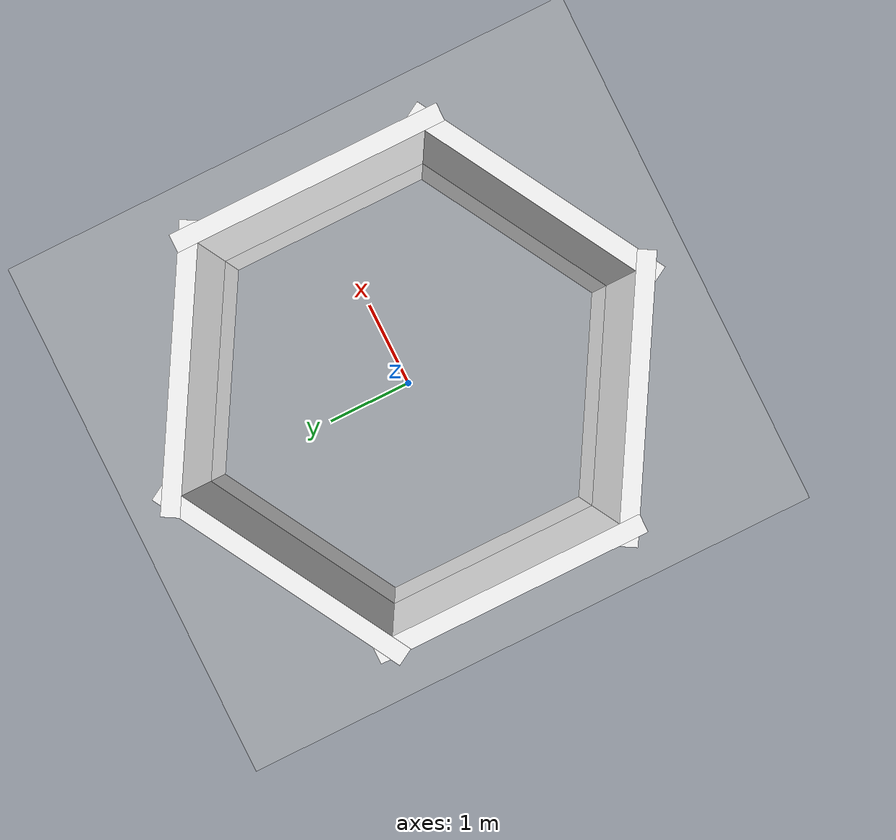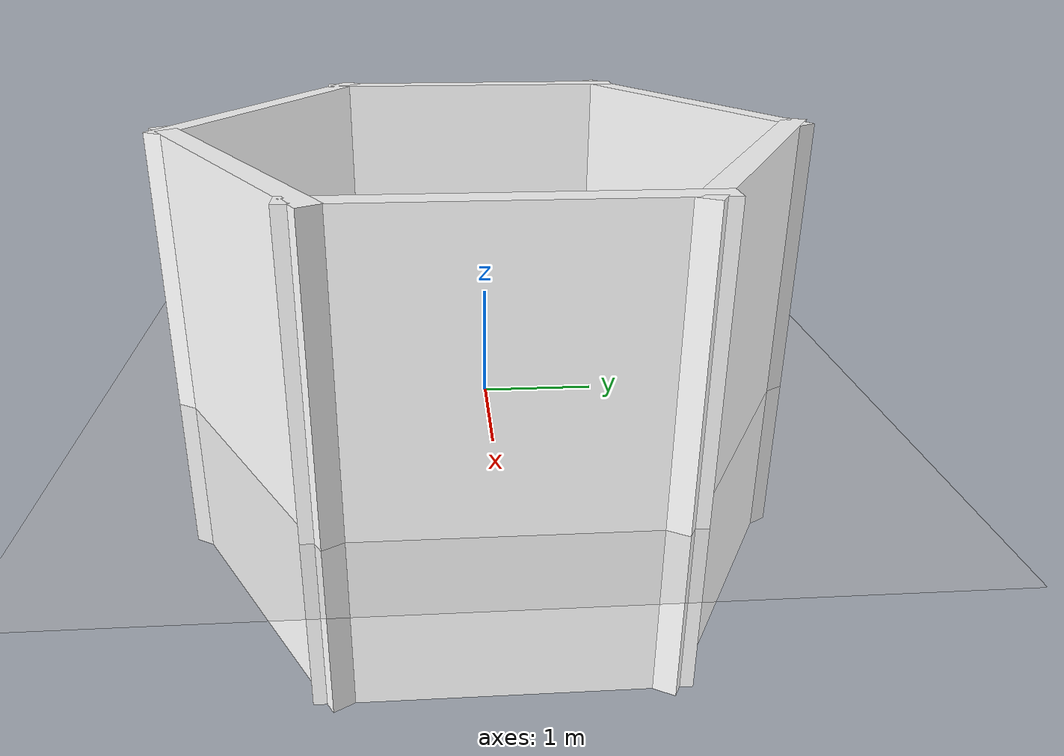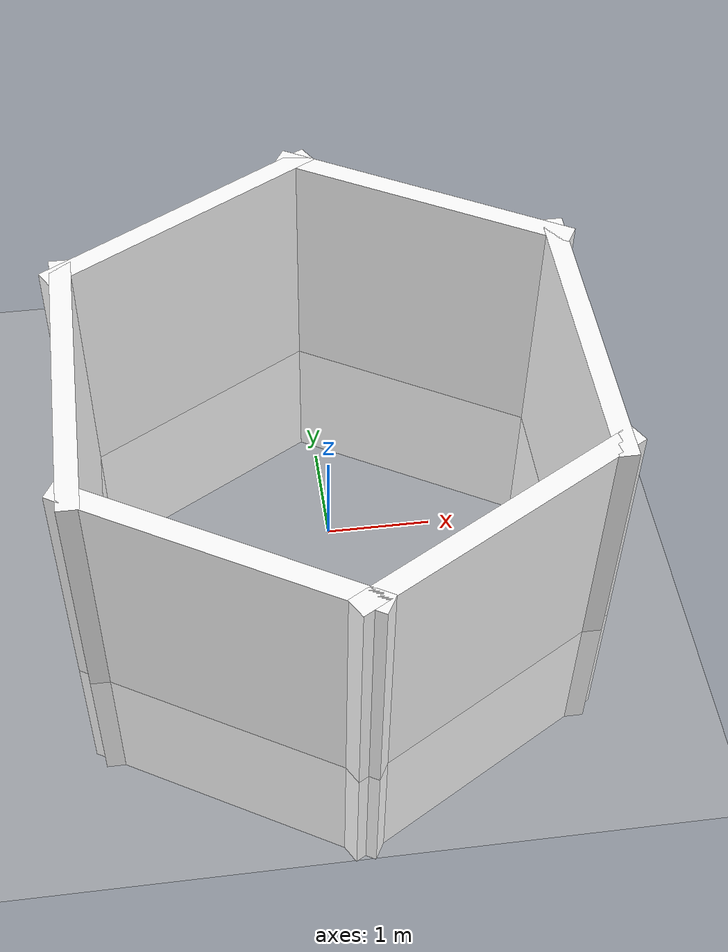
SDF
<sdf version="1.8">
 <world name="demo">
  <plugin filename="gz-sim-physics-system" name="gz::sim::systems::Physics"/>
  <plugin filename="gz-sim-sensors-system" name="gz::sim::systems::Sensors">
   <render_engine>ogre2</render_engine>
  </plugin>
  <plugin filename="gz-sim-scene-broadcaster-system" name="gz::sim::systems::SceneBroadcaster"/>
  <plugin filename="gz-sim-user-commands-system" name="gz::sim::systems::UserCommands"/>
  <light name="sun" type="directional">
   <pose>0 0 10 0 0 0</pose>
   <diffuse>0.8 0.8 0.8 1</diffuse>
   <specular>0.2 0.2 0.2 1</specular>
   <attenuation>
    <range>1000</range>
    <constant>0.9</constant>
    <linear>0.01</linear>
    <quadratic>0.001</quadratic>
   </attenuation>
   <direction>-0.5 0.1 -0.9</direction>
  </light>
  <model name="ground_plane">
   <static>true</static>
   <link name="link">
    <collision name="collision">
     <geometry><plane><normal>0 0 1</normal><size>100 100</size></plane></geometry>
    </collision>
    <visual name="visual">
     <geometry><plane><normal>0 0 1</normal><size>100 100</size></plane></geometry>
     <material>
      <ambient>0.8 0.8 0.8 1</ambient>
      <diffuse>0.8 0.8 0.8 1</diffuse>
      <specular>0.8 0.8 0.8 1</specular>
     </material>
    </visual>
   </link>
  </model>
  <model name="wall1">
   <pose>2.309 0.0 0.5 0 0 0</pose>
   <static>true</static>
   <link name="link">
    <visual name="visual">
     <geometry><box><size>0.2 3 4</size></box></geometry>
     <material>
      <ambient>1 1 1 1</ambient>
      <diffuse>1 1 1 1</diffuse>
      <pbr>
       <metal>
        <albedo_map>file:///home/odyssey/final-project/crazyflie_mapping_demo/ros2_ws/src/cf-gz/ros_gz_crazyflie_gazebo/worlds/wall_texture.png</albedo_map>
       </metal>
      </pbr>
     </material>
    </visual>
   </link>
  </model>
  <model name="wall2">
   <pose>1.155 2.0 0.5 0 0 1.047</pose>
   <static>true</static>
   <link name="link">
    <visual name="visual">
     <geometry><box><size>0.2 3 4</size></box></geometry>
     <material>
      <ambient>1 1 1 1</ambient>
      <diffuse>1 1 1 1</diffuse>
      <pbr>
       <metal>
        <albedo_map>file:///home/odyssey/final-project/crazyflie_mapping_demo/ros2_ws/src/cf-gz/ros_gz_crazyflie_gazebo/worlds/wall_texture.png</albedo_map>
       </metal>
      </pbr>
     </material>
    </visual>
   </link>
  </model>
  <model name="wall3">
   <pose>-1.155 2.0 0.5 0 0 2.094</pose>
   <static>true</static>
   <link name="link">
    <visual name="visual">
     <geometry><box><size>0.2 3 4</size></box></geometry>
     <material>
      <ambient>1 1 1 1</ambient>
      <diffuse>1 1 1 1</diffuse>
      <pbr>
       <metal>
        <albedo_map>file:///home/odyssey/final-project/crazyflie_mapping_demo/ros2_ws/src/cf-gz/ros_gz_crazyflie_gazebo/worlds/wall_texture.png</albedo_map>
       </metal>
      </pbr>
     </material>
    </visual>
   </link>
  </model>
  <model name="wall4">
   <pose>-2.309 0.0 0.5 0 0 3.142</pose>
   <static>true</static>
   <link name="link">
    <visual name="visual">
     <geometry><box><size>0.2 3 4</size></box></geometry>
     <material>
      <ambient>1 1 1 1</ambient>
      <diffuse>1 1 1 1</diffuse>
      <pbr>
       <metal>
        <albedo_map>file:///home/odyssey/final-project/crazyflie_mapping_demo/ros2_ws/src/cf-gz/ros_gz_crazyflie_gazebo/worlds/wall_texture.png</albedo_map>
       </metal>
      </pbr>
     </material>
    </visual>
   </link>
  </model>
  <model name="wall5">
   <pose>-1.155 -2.0 0.5 0 0 -2.094</pose>
   <static>true</static>
   <link name="link">
    <visual name="visual">
     <geometry><box><size>0.2 3 4</size></box></geometry>
     <material>
      <ambient>1 1 1 1</ambient>
      <diffuse>1 1 1 1</diffuse>
      <pbr>
       <metal>
        <albedo_map>file:///home/odyssey/final-project/crazyflie_mapping_demo/ros2_ws/src/cf-gz/ros_gz_crazyflie_gazebo/worlds/wall_texture.png</albedo_map>
       </metal>
      </pbr>
     </material>
    </visual>
   </link>
  </model>
  <model name="wall6">
   <pose>1.155 -2.0 0.5 0 0 -1.047</pose>
   <static>true</static>
   <link name="link">
    <visual name="visual">
     <geometry><box><size>0.2 3 4</size></box></geometry>
     <material>
      <ambient>1 1 1 1</ambient>
      <diffuse>1 1 1 1</diffuse>
      <pbr>
       <metal>
        <albedo_map>file:///home/odyssey/final-project/crazyflie_mapping_demo/ros2_ws/src/cf-gz/ros_gz_crazyflie_gazebo/worlds/wall_texture.png</albedo_map>
       </metal>
      </pbr>
     </material>
    </visual>
   </link>
  </model>
 </world>
</sdf>
